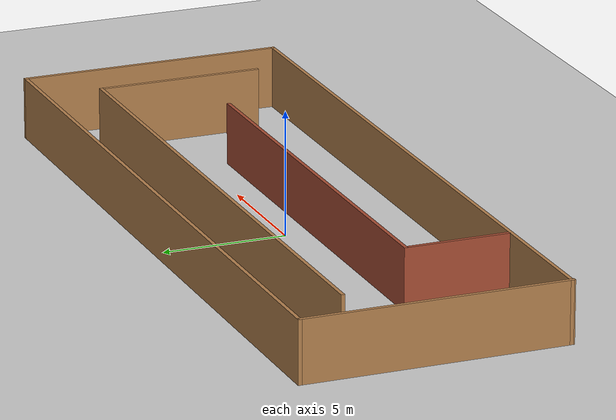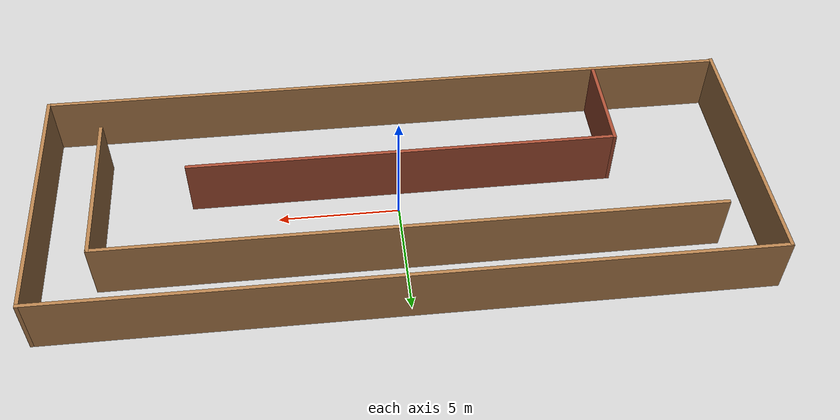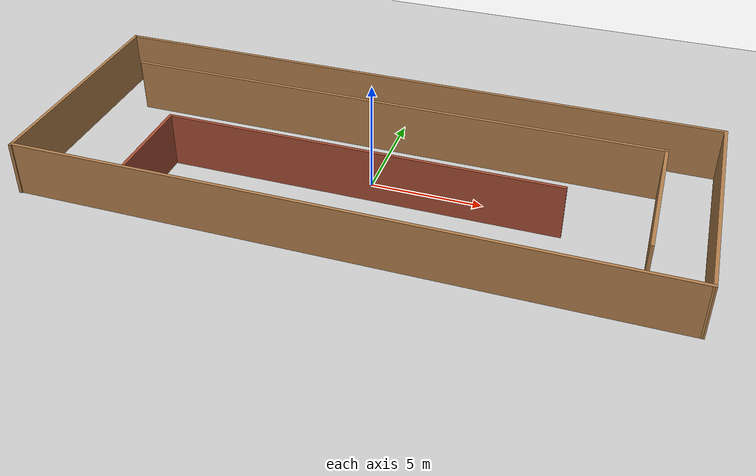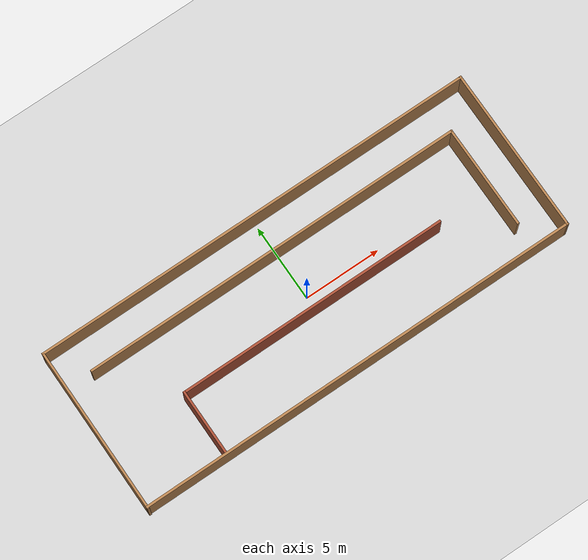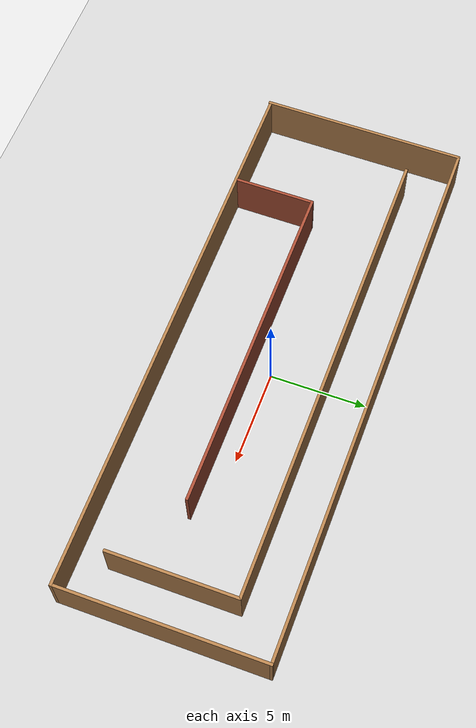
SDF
<sdf version="1.7">
 <world name="default">
  <light name="sun" type="directional">
   <pose>0 0 10 0 -0 0</pose>
   <diffuse>0.8 0.8 0.8 1</diffuse>
   <specular>0.2 0.2 0.2 1</specular>
   <attenuation>
    <range>1000</range>
    <constant>0.9</constant>
    <linear>0.01</linear>
    <quadratic>0.001</quadratic>
   </attenuation>
   <direction>-0.5 0.1 -0.9</direction>
   <spot><inner_angle>0</inner_angle><outer_angle>0</outer_angle><falloff>0</falloff></spot>
  </light>
  <model name="ground_plane">
   <static>1</static>
   <link name="link">
    <collision name="collision">
     <geometry><plane><normal>0 0 1</normal><size>100 100</size></plane></geometry>
     <surface>
      <contact><collide_bitmask>65535</collide_bitmask></contact>
      <friction><ode><mu>100</mu><mu2>50</mu2></ode></friction>
     </surface>
    </collision>
    <visual name="visual">
     <cast_shadows>0</cast_shadows>
     <geometry><plane><normal>0 0 1</normal><size>100 100</size></plane></geometry>
     <material>
      <script><uri>file://media/materials/scripts/gazebo.material</uri><name>Gazebo/Grey</name></script>
     </material>
    </visual>
   </link>
  </model>
  <gravity>0 0 -9.8</gravity>
  <magnetic_field>6e-06 2.3e-05 -4.2e-05</magnetic_field>
  <atmosphere type="adiabatic"/>
  <physics type="ode">
   <max_step_size>0.001</max_step_size>
   <real_time_factor>1</real_time_factor>
   <real_time_update_rate>1000</real_time_update_rate>
  </physics>
  <scene><ambient>0.4 0.4 0.4 1</ambient><background>0.7 0.7 0.7 1</background><shadows>1</shadows></scene>
  <spherical_coordinates>
   <surface_model>EARTH_WGS84</surface_model>
   <latitude_deg>0</latitude_deg>
   <longitude_deg>0</longitude_deg>
   <elevation>0</elevation>
   <heading_deg>0</heading_deg>
  </spherical_coordinates>
  <model name="test">
   <link name="Wall_0">
    <collision name="Wall_0_Collision">
     <geometry><box><size>10.75 0.15 2.5</size></box></geometry>
     <pose>0 0 1.25 0 -0 0</pose>
    </collision>
    <visual name="Wall_0_Visual">
     <pose>0 0 1.25 0 -0 0</pose>
     <geometry><box><size>10.75 0.15 2.5</size></box></geometry>
     <material>
      <script><uri>file://media/materials/scripts/gazebo.material</uri><name>Gazebo/Wood</name></script>
      <ambient>1 1 1 1</ambient>
     </material>
     <meta><layer>0</layer></meta>
    </visual>
    <pose>-14.4508 -0.023152 0 0 -0 -1.5708</pose>
   </link>
   <link name="Wall_1">
    <collision name="Wall_1_Collision">
     <geometry><box><size>29.0518 0.15 2.5</size></box></geometry>
     <pose>0 0 1.25 0 -0 0</pose>
    </collision>
    <visual name="Wall_1_Visual">
     <pose>0 0 1.25 0 -0 0</pose>
     <geometry><box><size>29.0518 0.15 2.5</size></box></geometry>
     <material>
      <script><uri>file://media/materials/scripts/gazebo.material</uri><name>Gazebo/Wood</name></script>
      <ambient>1 1 1 1</ambient>
     </material>
     <meta><layer>0</layer></meta>
    </visual>
    <pose>0 -5.2851 0 0 -0 -0.000568</pose>
   </link>
   <link name="Wall_2">
    <collision name="Wall_2_Collision">
     <geometry><box><size>10.75 0.15 2.5</size></box></geometry>
     <pose>0 0 1.25 0 -0 0</pose>
    </collision>
    <visual name="Wall_2_Visual">
     <pose>0 0 1.25 0 -0 0</pose>
     <geometry><box><size>10.75 0.15 2.5</size></box></geometry>
     <material>
      <script><uri>file://media/materials/scripts/gazebo.material</uri><name>Gazebo/Wood</name></script>
      <ambient>1 1 1 1</ambient>
     </material>
     <meta><layer>0</layer></meta>
    </visual>
    <pose>14.4508 0.006687 0 0 -0 1.5708</pose>
   </link>
   <link name="Wall_20">
    <collision name="Wall_20_Collision">
     <geometry><box><size>4.25 0.15 2.5</size></box></geometry>
     <pose>0 0 1.25 0 -0 0</pose>
    </collision>
    <visual name="Wall_20_Visual">
     <pose>0 0 1.25 0 -0 0</pose>
     <geometry><box><size>4.25 0.15 2.5</size></box></geometry>
     <material>
      <script><uri>file://media/materials/scripts/gazebo.material</uri><name>Gazebo/Bricks</name></script>
      <ambient>1 1 1 1</ambient>
     </material>
     <meta><layer>0</layer></meta>
    </visual>
    <pose>-9.09972 -3.09968 0 0 -0 1.5708</pose>
   </link>
   <link name="Wall_21">
    <collision name="Wall_21_Collision">
     <geometry><box><size>17.75 0.15 2.5</size></box></geometry>
     <pose>0 0 1.25 0 -0 0</pose>
    </collision>
    <visual name="Wall_21_Visual">
     <pose>0 0 1.25 0 -0 0</pose>
     <geometry><box><size>17.75 0.15 2.5</size></box></geometry>
     <material>
      <script><uri>file://media/materials/scripts/gazebo.material</uri><name>Gazebo/Bricks</name></script>
      <ambient>1 1 1 1</ambient>
     </material>
     <meta><layer>0</layer></meta>
    </visual>
    <pose>-0.299724 -1.04968 0 0 -0 0</pose>
   </link>
   <link name="Wall_3">
    <collision name="Wall_3_Collision">
     <geometry><box><size>29.0518 0.15 2.5</size></box></geometry>
     <pose>0 0 1.25 0 -0 0</pose>
    </collision>
    <visual name="Wall_3_Visual">
     <pose>0 0 1.25 0 -0 0</pose>
     <geometry><box><size>29.0518 0.15 2.5</size></box></geometry>
     <material>
      <script><uri>file://media/materials/scripts/gazebo.material</uri><name>Gazebo/Wood</name></script>
      <ambient>1 1 1 1</ambient>
     </material>
     <meta><layer>0</layer></meta>
    </visual>
    <pose>0 5.3149 0 0 -0 3.14102</pose>
   </link>
   <link name="Wall_5">
    <collision name="Wall_5_Collision">
     <geometry><box><size>25 0.15 2.5</size></box></geometry>
     <pose>0 0 1.25 0 -0 0</pose>
    </collision>
    <visual name="Wall_5_Visual">
     <pose>0 0 1.25 0 -0 0</pose>
     <geometry><box><size>25 0.15 2.5</size></box></geometry>
     <material>
      <script><uri>file://media/materials/scripts/gazebo.material</uri><name>Gazebo/Wood</name></script>
      <ambient>1 1 1 1</ambient>
     </material>
     <meta><layer>0</layer></meta>
    </visual>
    <pose>-0.285834 2.95741 0 0 -0 0</pose>
   </link>
   <link name="Wall_6">
    <collision name="Wall_6_Collision">
     <geometry><box><size>6.75 0.15 2.5</size></box></geometry>
     <pose>0 0 1.25 0 -0 0</pose>
    </collision>
    <visual name="Wall_6_Visual">
     <pose>0 0 1.25 0 -0 0</pose>
     <geometry><box><size>6.75 0.15 2.5</size></box></geometry>
     <material>
      <script><uri>file://media/materials/scripts/gazebo.material</uri><name>Gazebo/Wood</name></script>
      <ambient>1 1 1 1</ambient>
     </material>
     <meta><layer>0</layer></meta>
    </visual>
    <pose>12.1392 -0.342593 0 0 -0 -1.5708</pose>
   </link>
   <static>1</static>
  </model>
 </world>
</sdf>
